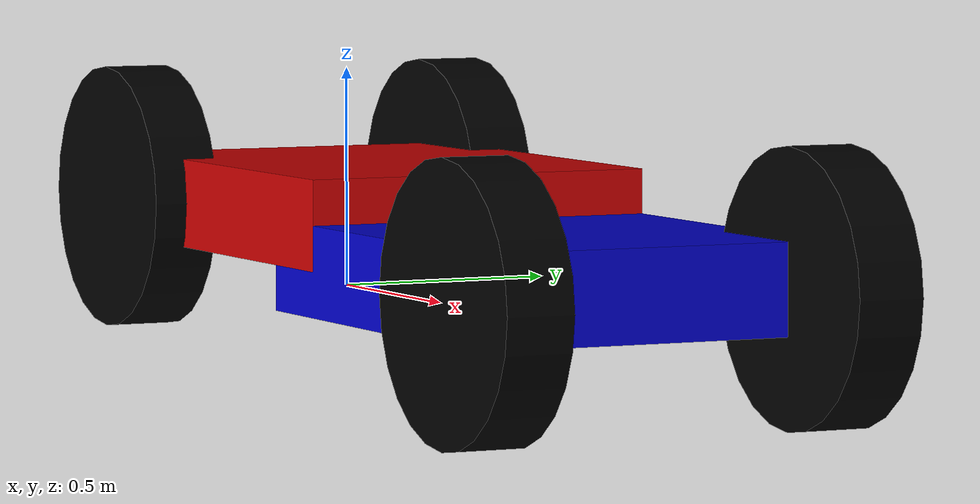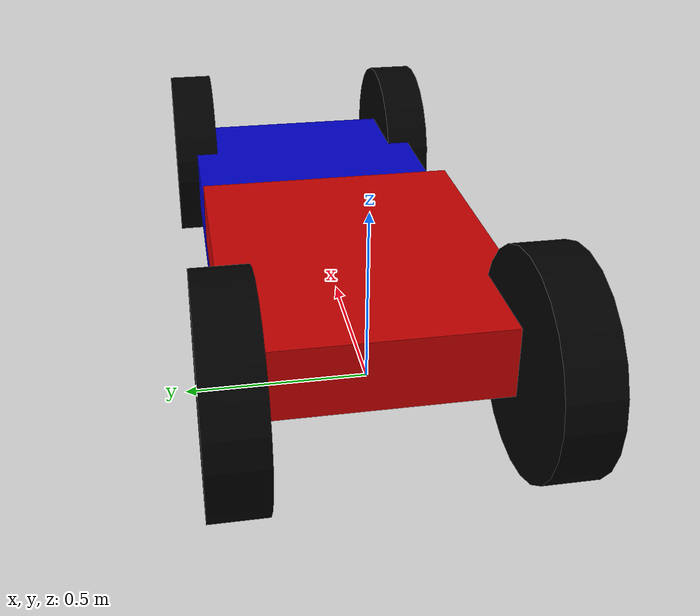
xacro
<?xml version="1.0"?>
<robot name="afs_robot" xmlns:xacro="http://www.ros.org/wiki/xacro">

  <!-- Фиксированные параметры -->
  <xacro:property name="wheel_radius" value="0.3" />
  <xacro:property name="wheel_width" value="0.15" />
  <xacro:property name="frame_length" value="1.0" />
  <xacro:property name="frame_width" value="0.8" />
  <xacro:property name="frame_height" value="0.2" />
  <xacro:property name="articulation_offset" value="0.5" />
  <!-- В начале файла, где объявляются свойства -->
	<xacro:property name="wheelbase" value="2.0" />  <!-- Расстояние между осями -->
	<xacro:property name="articulation_pos" value="${wheelbase*0.1}" />  <!-- Позиция шарнира (0 = середина) -->

  <!-- Предварительные вычисления -->
  <xacro:property name="fl_x" value="${frame_length/2}" />
  <xacro:property name="fl_y" value="${frame_width/2}" />
  <xacro:property name="fr_x" value="${frame_length/2}" />
  <xacro:property name="fr_y" value="${-frame_width/2}" />
  <xacro:property name="rl_x" value="${-frame_length/2}" />
  <xacro:property name="rl_y" value="${frame_width/2}" />
  <xacro:property name="rr_x" value="${-frame_length/2}" />
  <xacro:property name="rr_y" value="${-frame_width/2}" />
  <xacro:property name="art_x" value="${-(frame_length/2 + articulation_offset)}" />
  <xacro:property name="pi" value="3.1415926535897931" />

  <!-- Добавим фреймы для одометрии -->
	<link name="odom"/>
	<joint name="odom_to_base" type="fixed">
		<parent link="odom"/>
		<child link="base_link"/>
	</joint>

  <!-- Базовый линк (мир) -->
	<link name="base_link"/>

	<!-- Крепление передней рамы к базе -->
	<joint name="base_to_front" type="fixed">
		<parent link="base_link"/>
		<child link="front_frame"/>
		<origin xyz="${wheelbase/2} 0 ${frame_height/2}" rpy="0 0 0"/>
	</joint>

  <!-- Основные рамы -->
  <link name="front_frame">
    <visual>
      <geometry>
        <box size="${frame_length} ${frame_width} ${frame_height}"/>
      </geometry>
      <material name="blue">
        <color rgba="0 0 0.8 1"/>
      </material>
    </visual>
  </link>

  <link name="rear_frame">
    <visual>
      <geometry>
        <box size="${frame_length} ${frame_width} ${frame_height}"/>
      </geometry>
      <material name="red">
        <color rgba="0.8 0 0 1"/>
      </material>
    </visual>
  </link>

  <!-- Обновлённый шарнир сочленения -->
	<joint name="articulation_joint" type="revolute">
		<parent link="front_frame"/>
		<child link="rear_frame"/>
		<origin xyz="${-wheelbase/2 + articulation_pos} 0 ${frame_height/2}" rpy="0 0 0"/>
		<axis xyz="0 0 1"/>
		<limit lower="-0.8" upper="0.8" effort="100" velocity="1.0"/>
	</joint>

  <!-- Макрос для колеса с правильной ориентацией -->
  <xacro:macro name="wheel" params="prefix parent x y">
    <link name="${prefix}_wheel">
      <visual>
        <!-- Колесо лежит горизонтально -->
        <geometry>
          <cylinder radius="${wheel_radius}" length="${wheel_width}"/>
        </geometry>
        <material name="black">
          <color rgba="0 0 0 1"/>
        </material>
        <origin rpy="${pi/2} 0 0" xyz="0 0 0"/> <!-- Поворот на 90° вокруг X -->
      </visual>
    </link>

    <joint name="${prefix}_drive_joint" type="continuous">
      <parent link="${parent}"/>
      <child link="${prefix}_wheel"/>
      <origin xyz="${x} ${y} 0" rpy="0 0 0"/>
      <axis xyz="0 1 0"/> <!-- Ось вращения горизонтальна -->
    </joint>

    <transmission name="${prefix}_drive_trans">
      <type>transmission_interface/SimpleTransmission</type>
      <joint name="${prefix}_drive_joint">
        <hardwareInterface>hardware_interface/VelocityJointInterface</hardwareInterface>
      </joint>
    </transmission>
  </xacro:macro>

  <!-- 4 колеса -->
  <xacro:wheel prefix="front_left" parent="front_frame" x="${fl_x}" y="${fl_y}"/>
  <xacro:wheel prefix="front_right" parent="front_frame" x="${fr_x}" y="${fr_y}"/>
  <xacro:wheel prefix="rear_left" parent="rear_frame" x="${rl_x}" y="${rl_y}"/>
  <xacro:wheel prefix="rear_right" parent="rear_frame" x="${rr_x}" y="${rr_y}"/>

  <!-- ros2_control -->
  <ros2_control name="afs_control" type="system">
    <hardware>
      <plugin>fake_components/FakeSystem</plugin>
    </hardware>

    <!-- Шарнир сочленения -->
    <joint name="articulation_joint">
      <command_interface name="position"/>
      <state_interface name="position"/>
    </joint>

    <!-- Приводные шарниры -->
    <joint name="front_left_drive_joint">
      <command_interface name="velocity"/>
      <state_interface name="velocity"/>
    </joint>
    <joint name="front_right_drive_joint">
      <command_interface name="velocity"/>
      <state_interface name="velocity"/>
    </joint>
    <joint name="rear_left_drive_joint">
      <command_interface name="velocity"/>
      <state_interface name="velocity"/>
    </joint>
    <joint name="rear_right_drive_joint">
      <command_interface name="velocity"/>
      <state_interface name="velocity"/>
    </joint>
    <state_interface name="front_left_drive_joint/position"/>
    <state_interface name="front_right_drive_joint/position"/>
  </ros2_control>
</robot>
